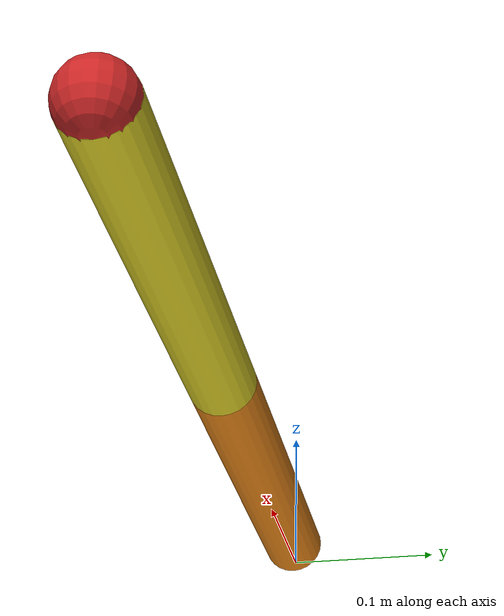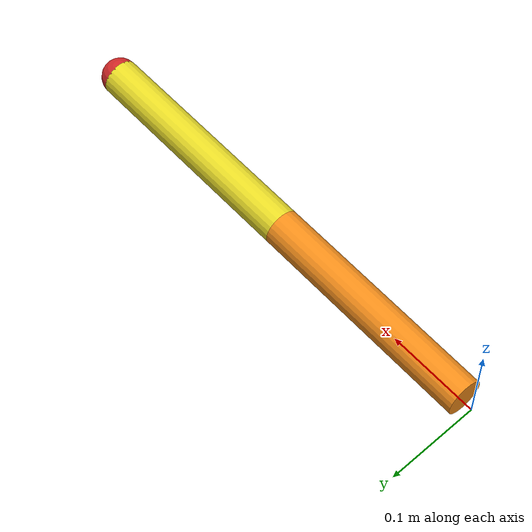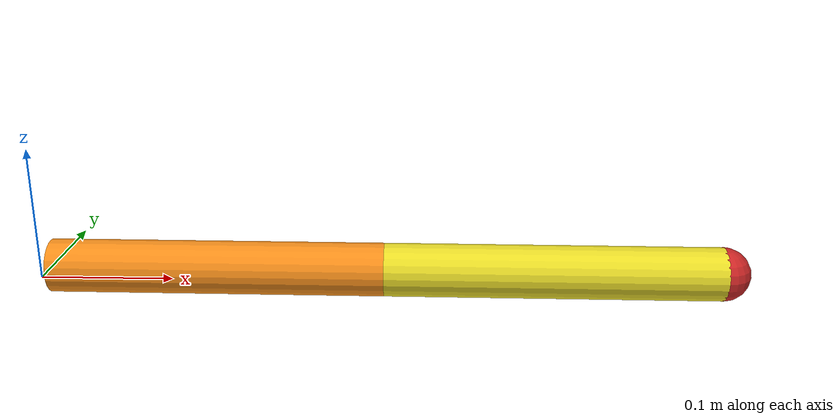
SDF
<sdf version="1.6">
    <model name="link_bot">
        <pose frame="">0 0 0.01 0 0 0</pose>

        <link name="link_1">
            <pose frame="">0.25 0 0 3.14159 -1.57079 3.14159</pose>
            <inertial>
                <pose frame="">0.025 0 0 0 0 0</pose>
                <mass>0.25</mass>
                <inertia>
                    <ixx>0.0013270833333333333</ixx>
                    <ixy>0</ixy>
                    <ixz>0</ixz>
                    <iyy>0.0013270833333333333</iyy>
                    <iyz>0</iyz>
                    <izz>5.0e-05</izz>
                </inertia>
            </inertial>
            <collision name="link_1_collision">
                <pose frame="">0 0 0.115 0 0 0</pose>
                <geometry>
                    <box>
                        <size>0.04 0.04 0.1875</size>
                    </box>
                </geometry>
                <surface>
                    <friction>
                        <ode>
                            <mu>0.10</mu>
                            <mu2>0.10</mu2>
                        </ode>
                    </friction>
                </surface>
                <max_contacts>5</max_contacts>
            </collision>
            <visual name="link_1_visual">
                <cast_shadows>0</cast_shadows>
                <pose frame="">0 0 0.115 0 0 0</pose>
                <geometry>
                    <cylinder>
                        <length>0.25</length>
                        <radius>0.02</radius>
                    </cylinder>
                </geometry>
                <material>
                    <script>
                        <name>Gazebo/Orange</name>
                        <uri>file://media/materials/scripts/gazebo.material</uri>
                    </script>
                </material>
            </visual>
            <self_collide>1</self_collide>
        </link>

        <link name="link_2">
            <pose frame="">0.5 0 0 3.14159 -1.57079 3.14159</pose>
            <inertial>
                <pose frame="">0.025 0 0 0 0 0</pose>
                <mass>0.25</mass>
                <inertia>
                    <ixx>0.0013270833333333333</ixx>
                    <ixy>0</ixy>
                    <ixz>0</ixz>
                    <iyy>0.0013270833333333333</iyy>
                    <iyz>0</iyz>
                    <izz>5.0e-05</izz>
                </inertia>
            </inertial>
            <collision name="link_2_collision">
                <pose frame="">0 0 0.115 0 0 0</pose>
                <geometry>
                    <box>
                        <size>0.04 0.04 0.1875</size>
                    </box>
                </geometry>
                <surface>
                    <friction>
                        <ode>
                            <mu>0.10</mu>
                            <mu2>0.10</mu2>
                        </ode>
                    </friction>
                </surface>
                <max_contacts>5</max_contacts>
            </collision>
            <visual name="link_2_visual">
                <cast_shadows>0</cast_shadows>
                <pose frame="">0 0 0.115 0 0 0</pose>
                <geometry>
                    <cylinder>
                        <length>0.25</length>
                        <radius>0.02</radius>
                    </cylinder>
                </geometry>
                <material>
                    <script>
                        <name>Gazebo/Yellow</name>
                        <uri>file://media/materials/scripts/gazebo.material</uri>
                    </script>
                </material>
            </visual>
            <self_collide>1</self_collide>
        </link>

        <joint name="joint_1" type="revolute">
            <child>link_2</child>
            <parent>link_1</parent>
            <pose>0 0 0.24 0 0 0</pose>
            <axis>
                <xyz>0 0 1</xyz>
                <limit>
                    <lower>-3</lower>
                    <upper>3</upper>
                    <effort>10</effort>
                    <velocity>5</velocity>
                </limit>
                <dynamics>
                    <damping>0</damping>
                    <friction>0</friction>
                </dynamics>
                <use_parent_model_frame>1</use_parent_model_frame>
            </axis>
        </joint>

        <link name='head'>
            <pose frame=''>0.51 0 0 0 0 0</pose>
            <inertial>
                <pose frame=''>0 0 0 0 0 0</pose>
                <mass>0.1</mass>
                <inertia>
                    <ixx>0.0001</ixx>
                    <ixy>0</ixy>
                    <ixz>0</ixz>
                    <iyy>0.0001</iyy>
                    <iyz>0</iyz>
                    <izz>0.001</izz>
                </inertia>
            </inertial>
            <collision name='head_collision'>
                <pose frame=''>0 0 0 0 0 0</pose>
                <geometry>
                    <sphere>
                        <radius>0.02</radius>
                    </sphere>
                </geometry>
                <surface>
                    <friction>
                        <ode>
                            <mu>0.10</mu>
                            <mu2>0.10</mu2>
                        </ode>
                    </friction>
                </surface>
                <max_contacts>20</max_contacts>
            </collision>
            <visual name='head_visual'>
                <cast_shadows>0</cast_shadows>
                <pose frame=''>0 0 0 0 0 0</pose>
                <geometry>
                    <sphere>
                        <radius>0.02</radius>
                    </sphere>
                </geometry>
                <material>
                    <script>
                        <name>Gazebo/Red</name>
                        <uri>file://media/materials/scripts/gazebo.material</uri>
                    </script>
                </material>
            </visual>
            <self_collide>1</self_collide>
            <sensor name='head_contact' type='contact'>
                <contact>
                    <collision>head_collision</collision>
                    <topic>__default_topic__</topic>
                </contact>
            </sensor>
        </link>
        <joint name="head_joint" type="revolute">
            <child>head</child>
            <parent>link_2</parent>
            <pose>0 0 0 0 0 0</pose>
            <axis>
                <xyz>0 0 1</xyz>
                <limit>
                    <lower>-3</lower>
                    <upper>3</upper>
                    <effort>10</effort>
                    <velocity>5</velocity>
                </limit>
                <dynamics>
                    <damping>0</damping>
                    <friction>0</friction>
                </dynamics>
            </axis>
            <physics>
                <ode>
                    <limit>
                        <cfm>0</cfm>
                        <erp>0.2</erp>
                    </limit>
                </ode>
            </physics>
        </joint>
        <plugin name='multi_link_bot_model_plugin' filename='libmulti_link_bot_model_plugin.so'>
            <kP_pos>50</kP_pos>
            <kI_pos>0.001</kI_pos>
            <kD_pos>0.0</kD_pos>
            <kP_vel>20.0</kP_vel>
            <kI_vel>0.0</kI_vel>
            <kD_vel>0.0</kD_vel>
            <max_force>1.0</max_force>
            <max_vel>0.15</max_vel>
            <max_vel_acc>0.01</max_vel_acc>
            <gripper1_link>head</gripper1_link>
            <num_links>2</num_links>
            <rope_length>0.5</rope_length>
        </plugin>
    </model>
</sdf>
